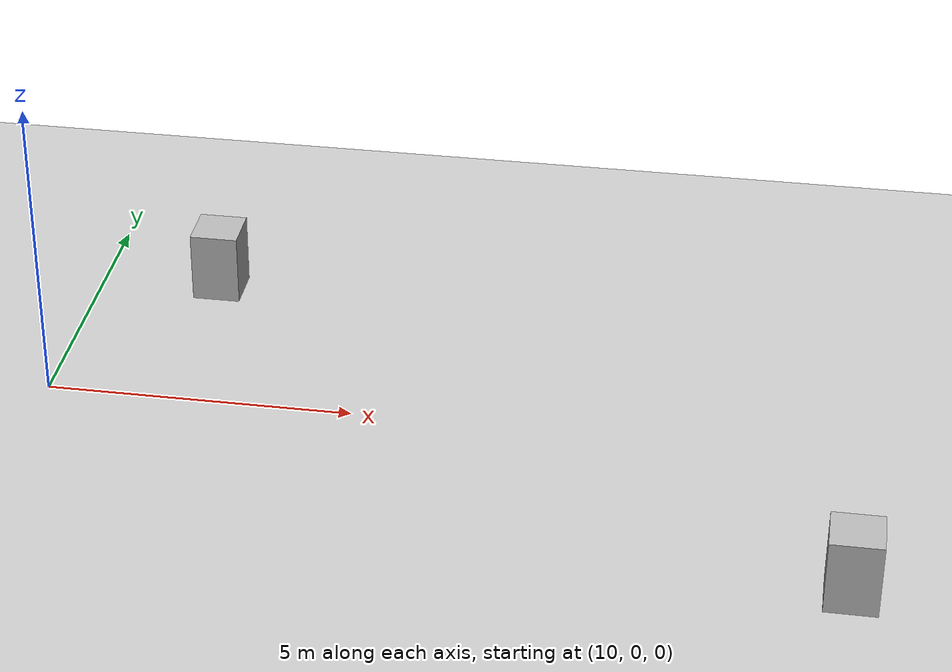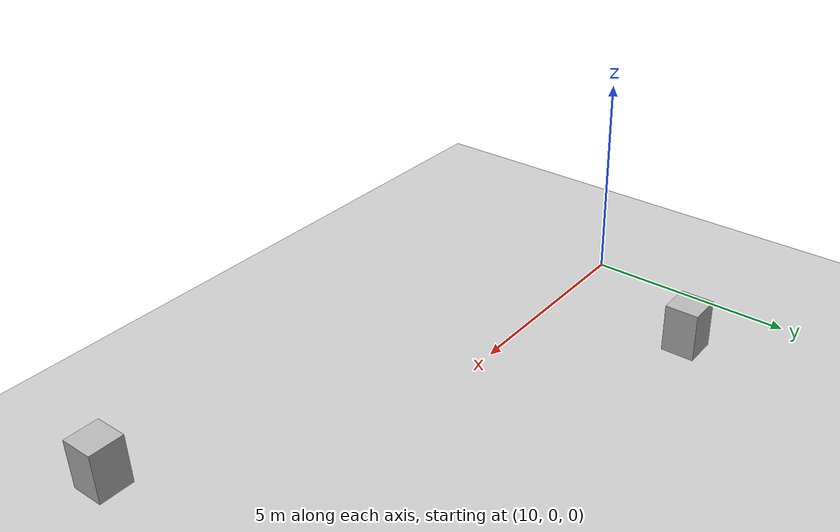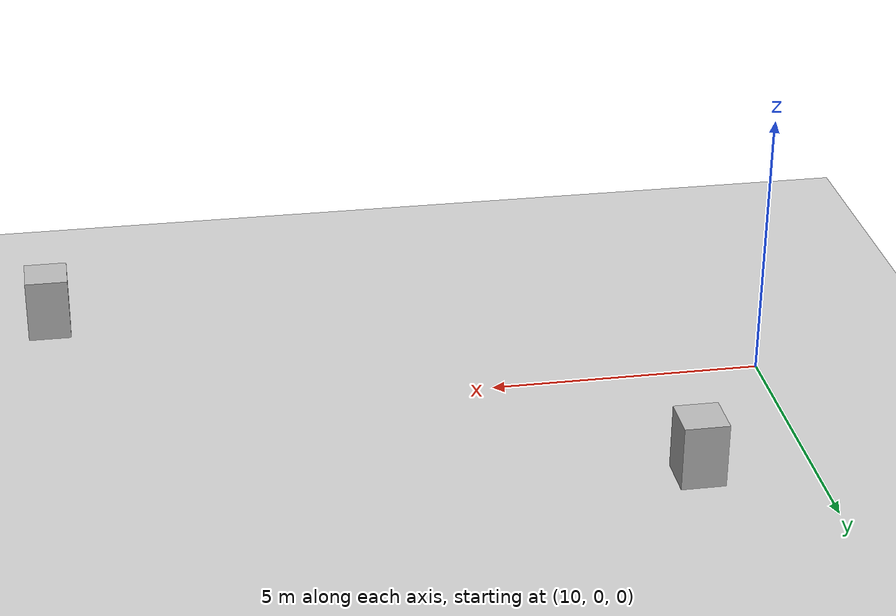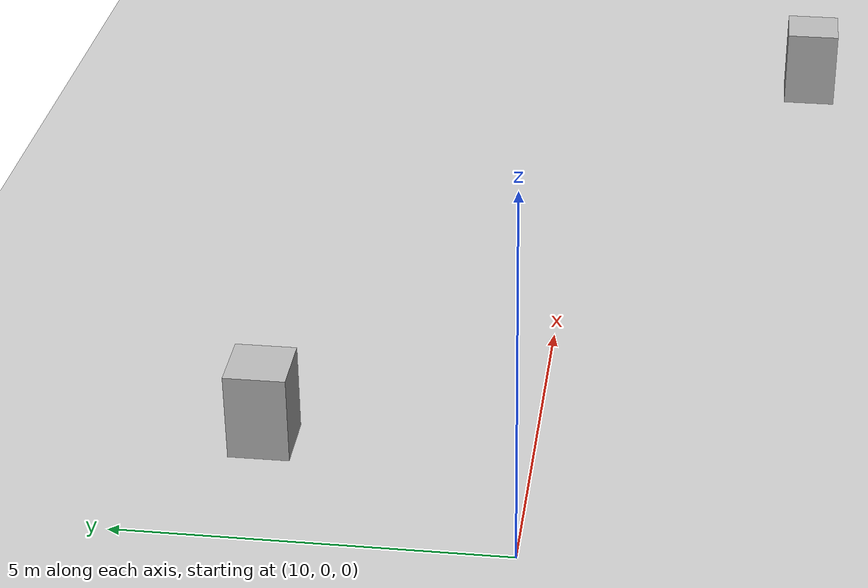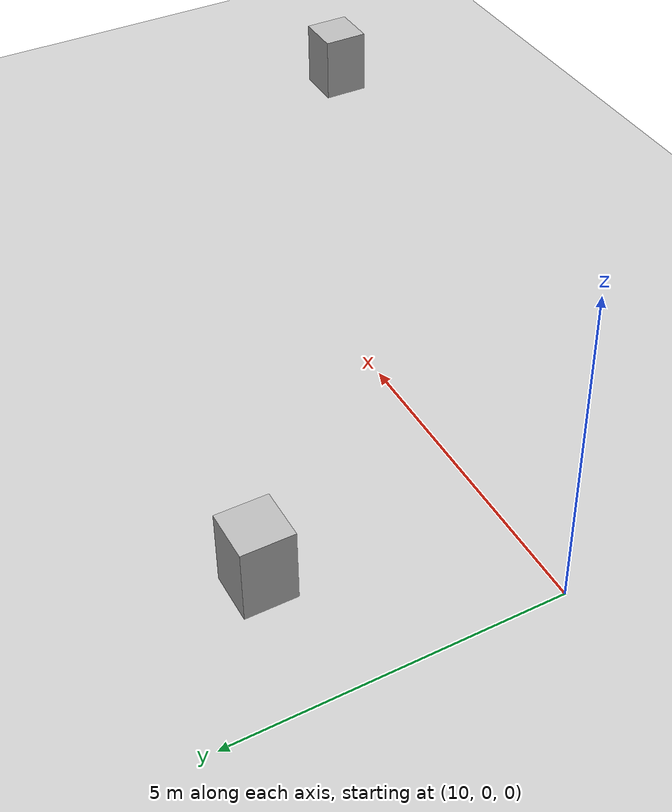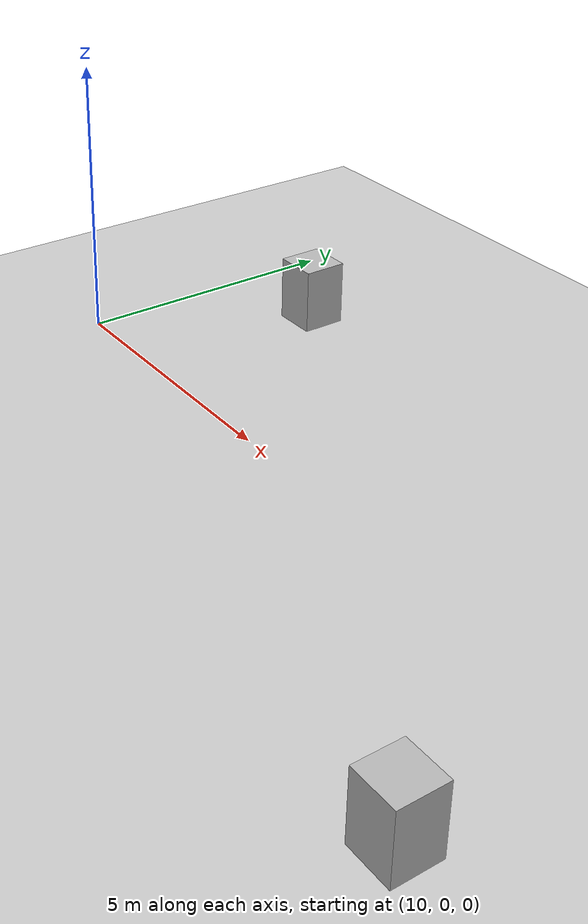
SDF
<?xml version="1.0"?>
<sdf version="1.6">
  <world name="v2-04g-r5-readiness-compile-support-cruise-s5114">
    <gravity>0 0 -9.81</gravity>
    <physics name="v2_deterministic" type="ode">
      <max_step_size>0.002</max_step_size>
      <real_time_update_rate>500</real_time_update_rate>
    </physics>
    <include>
      <uri>model://sun</uri>
    </include>
    <include>
      <uri>model://ground_plane</uri>
    </include>
    <model name="cruise-left">
      <static>true</static>
      <pose>12.053177276 3.478013236 0.600000000 0 0 0.002109158</pose>
      <link name="link">
        <collision name="collision">
          <geometry>
            <box>
              <size>0.800000 0.800000 1.200000</size>
            </box>
          </geometry>
        </collision>
        <visual name="visual">
          <geometry>
            <box>
              <size>0.800000 0.800000 1.200000</size>
            </box>
          </geometry>
        </visual>
      </link>
    </model>
    <model name="cruise-right">
      <static>true</static>
      <pose>23.010434295 -3.520485300 0.600000000 0 0 -0.000832327</pose>
      <link name="link">
        <collision name="collision">
          <geometry>
            <box>
              <size>0.800000 0.800000 1.200000</size>
            </box>
          </geometry>
        </collision>
        <visual name="visual">
          <geometry>
            <box>
              <size>0.800000 0.800000 1.200000</size>
            </box>
          </geometry>
        </visual>
      </link>
    </model>
  </world>
</sdf>
